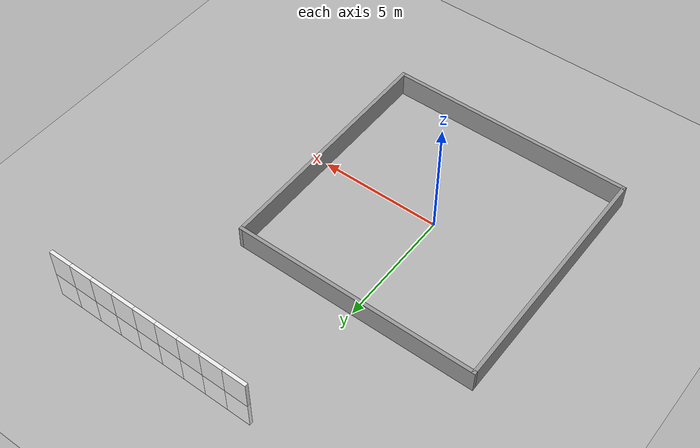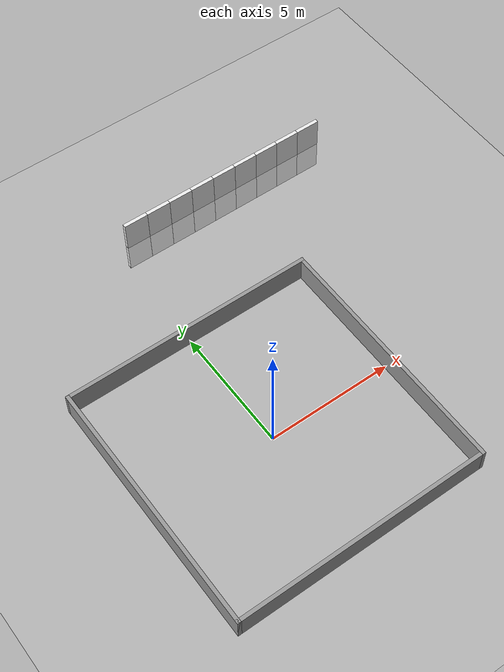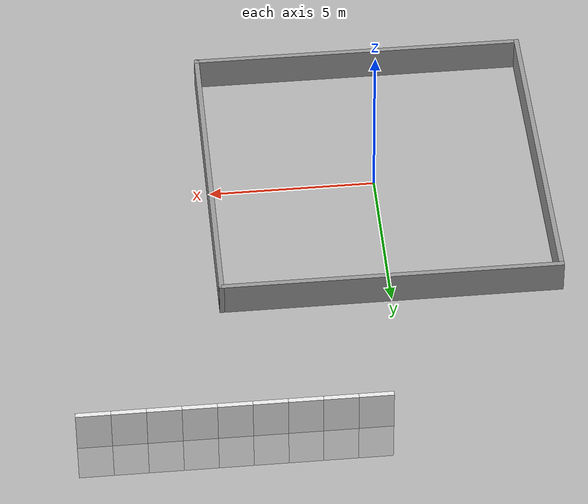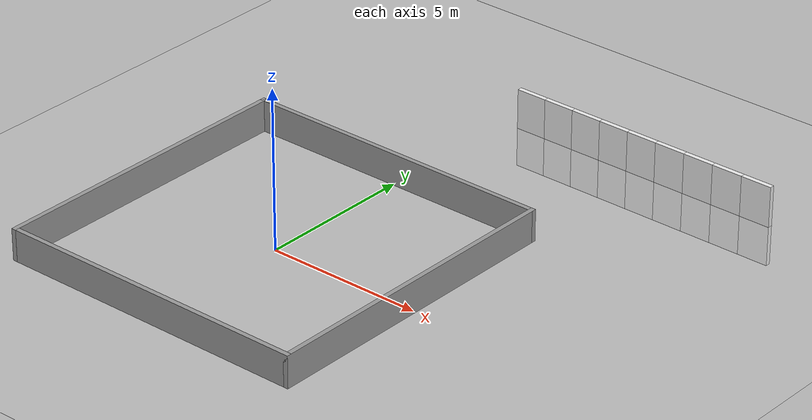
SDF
<sdf version="1.7">
 <world name="default">
  <model name="ground_plane">
   <static>1</static>
   <link name="link">
    <collision name="collision">
     <geometry><plane><normal>0 0 1</normal><size>100 100</size></plane></geometry>
     <surface>
      <contact><collide_bitmask>65535</collide_bitmask></contact>
      <friction><ode><mu>100</mu><mu2>50</mu2></ode></friction>
     </surface>
    </collision>
    <visual name="visual">
     <cast_shadows>0</cast_shadows>
     <geometry><plane><normal>0 0 1</normal><size>100 100</size></plane></geometry>
     <material>
      <script><uri>file://media/materials/scripts/gazebo.material</uri><name>Gazebo/Grey</name></script>
     </material>
    </visual>
   </link>
  </model>
  <model name="wall_left_12">
   <link name="Wall_10">
    <inertial>
     <mass>1</mass>
     <inertia><ixx>1</ixx><ixy>0</ixy><ixz>0</ixz><iyy>1</iyy><iyz>0</iyz><izz>1</izz></inertia>
    </inertial>
    <visual name="Wall_10_Visual_0">
     <geometry><box><size>1 0.15 2.5</size></box></geometry>
     <material>
      <script>
       <uri>model://wall/materials/scripts</uri>
       <uri>model://wall/materials/textures</uri>
       <name>wall_white</name>
      </script>
      <shader type="pixel"><normal_map>__default__</normal_map></shader>
      <ambient>1 1 1 1</ambient>
      <diffuse>1 1 1 1</diffuse>
      <specular>0 0 0 1</specular>
      <emissive>0 0 0 1</emissive>
     </material>
     <meta><layer>0</layer></meta>
    </visual>
    <collision name="Wall_10_Collision_0">
     <geometry><box><size>1 0.15 2.5</size></box></geometry>
     <surface>
      <friction>
       <ode><mu>1</mu><mu2>1</mu2><fdir1>0 0 0</fdir1><slip1>0</slip1><slip2>0</slip2></ode>
       <torsional>
        <coefficient>1</coefficient>
        <patch_radius>0</patch_radius>
        <surface_radius>0</surface_radius>
        <use_patch_radius>1</use_patch_radius>
        <ode><slip>0</slip></ode>
       </torsional>
      </friction>
      <bounce><restitution_coefficient>0</restitution_coefficient><threshold>1e+06</threshold></bounce>
      <contact>
       <collide_without_contact>0</collide_without_contact>
       <collide_without_contact_bitmask>1</collide_without_contact_bitmask>
       <collide_bitmask>1</collide_bitmask>
       <ode>
        <soft_cfm>0</soft_cfm>
        <soft_erp>0.2</soft_erp>
        <kp>1e+13</kp>
        <kd>1</kd>
        <max_vel>0.01</max_vel>
        <min_depth>0</min_depth>
       </ode>
       <bullet>
        <split_impulse>1</split_impulse>
        <split_impulse_penetration_threshold>-0.01</split_impulse_penetration_threshold>
        <soft_cfm>0</soft_cfm>
        <soft_erp>0.2</soft_erp>
        <kp>1e+13</kp>
        <kd>1</kd>
       </bullet>
      </contact>
     </surface>
    </collision>
   </link>
   <static>1</static>
   <pose>1 10 0 0 -0 0</pose>
  </model>
  <model name="wall_left_13">
   <link name="Wall_10">
    <inertial>
     <mass>1</mass>
     <inertia><ixx>1</ixx><ixy>0</ixy><ixz>0</ixz><iyy>1</iyy><iyz>0</iyz><izz>1</izz></inertia>
    </inertial>
    <visual name="Wall_10_Visual_0">
     <geometry><box><size>1 0.15 2.5</size></box></geometry>
     <material>
      <script>
       <uri>model://wall/materials/scripts</uri>
       <uri>model://wall/materials/textures</uri>
       <name>wall_white</name>
      </script>
      <shader type="pixel"><normal_map>__default__</normal_map></shader>
      <ambient>1 1 1 1</ambient>
      <diffuse>1 1 1 1</diffuse>
      <specular>0 0 0 1</specular>
      <emissive>0 0 0 1</emissive>
     </material>
     <meta><layer>0</layer></meta>
    </visual>
    <collision name="Wall_10_Collision_0">
     <geometry><box><size>1 0.15 2.5</size></box></geometry>
     <surface>
      <friction>
       <ode><mu>1</mu><mu2>1</mu2><fdir1>0 0 0</fdir1><slip1>0</slip1><slip2>0</slip2></ode>
       <torsional>
        <coefficient>1</coefficient>
        <patch_radius>0</patch_radius>
        <surface_radius>0</surface_radius>
        <use_patch_radius>1</use_patch_radius>
        <ode><slip>0</slip></ode>
       </torsional>
      </friction>
      <bounce><restitution_coefficient>0</restitution_coefficient><threshold>1e+06</threshold></bounce>
      <contact>
       <collide_without_contact>0</collide_without_contact>
       <collide_without_contact_bitmask>1</collide_without_contact_bitmask>
       <collide_bitmask>1</collide_bitmask>
       <ode>
        <soft_cfm>0</soft_cfm>
        <soft_erp>0.2</soft_erp>
        <kp>1e+13</kp>
        <kd>1</kd>
        <max_vel>0.01</max_vel>
        <min_depth>0</min_depth>
       </ode>
       <bullet>
        <split_impulse>1</split_impulse>
        <split_impulse_penetration_threshold>-0.01</split_impulse_penetration_threshold>
        <soft_cfm>0</soft_cfm>
        <soft_erp>0.2</soft_erp>
        <kp>1e+13</kp>
        <kd>1</kd>
       </bullet>
      </contact>
     </surface>
    </collision>
   </link>
   <static>1</static>
   <pose>2 10 0 0 -0 0</pose>
  </model>
  <model name="wall_left_14">
   <link name="Wall_10">
    <inertial>
     <mass>1</mass>
     <inertia><ixx>1</ixx><ixy>0</ixy><ixz>0</ixz><iyy>1</iyy><iyz>0</iyz><izz>1</izz></inertia>
    </inertial>
    <visual name="Wall_10_Visual_0">
     <geometry><box><size>1 0.15 2.5</size></box></geometry>
     <material>
      <script>
       <uri>model://wall/materials/scripts</uri>
       <uri>model://wall/materials/textures</uri>
       <name>wall_white</name>
      </script>
      <shader type="pixel"><normal_map>__default__</normal_map></shader>
      <ambient>1 1 1 1</ambient>
      <diffuse>1 1 1 1</diffuse>
      <specular>0 0 0 1</specular>
      <emissive>0 0 0 1</emissive>
     </material>
     <meta><layer>0</layer></meta>
    </visual>
    <collision name="Wall_10_Collision_0">
     <geometry><box><size>1 0.15 2.5</size></box></geometry>
     <surface>
      <friction>
       <ode><mu>1</mu><mu2>1</mu2><fdir1>0 0 0</fdir1><slip1>0</slip1><slip2>0</slip2></ode>
       <torsional>
        <coefficient>1</coefficient>
        <patch_radius>0</patch_radius>
        <surface_radius>0</surface_radius>
        <use_patch_radius>1</use_patch_radius>
        <ode><slip>0</slip></ode>
       </torsional>
      </friction>
      <bounce><restitution_coefficient>0</restitution_coefficient><threshold>1e+06</threshold></bounce>
      <contact>
       <collide_without_contact>0</collide_without_contact>
       <collide_without_contact_bitmask>1</collide_without_contact_bitmask>
       <collide_bitmask>1</collide_bitmask>
       <ode>
        <soft_cfm>0</soft_cfm>
        <soft_erp>0.2</soft_erp>
        <kp>1e+13</kp>
        <kd>1</kd>
        <max_vel>0.01</max_vel>
        <min_depth>0</min_depth>
       </ode>
       <bullet>
        <split_impulse>1</split_impulse>
        <split_impulse_penetration_threshold>-0.01</split_impulse_penetration_threshold>
        <soft_cfm>0</soft_cfm>
        <soft_erp>0.2</soft_erp>
        <kp>1e+13</kp>
        <kd>1</kd>
       </bullet>
      </contact>
     </surface>
    </collision>
   </link>
   <static>1</static>
   <pose>3 10 0 0 -0 0</pose>
  </model>
  <model name="wall_left_15">
   <link name="Wall_10">
    <inertial>
     <mass>1</mass>
     <inertia><ixx>1</ixx><ixy>0</ixy><ixz>0</ixz><iyy>1</iyy><iyz>0</iyz><izz>1</izz></inertia>
    </inertial>
    <visual name="Wall_10_Visual_0">
     <geometry><box><size>1 0.15 2.5</size></box></geometry>
     <material>
      <script>
       <uri>model://wall/materials/scripts</uri>
       <uri>model://wall/materials/textures</uri>
       <name>wall_white</name>
      </script>
      <shader type="pixel"><normal_map>__default__</normal_map></shader>
      <ambient>1 1 1 1</ambient>
      <diffuse>1 1 1 1</diffuse>
      <specular>0 0 0 1</specular>
      <emissive>0 0 0 1</emissive>
     </material>
     <meta><layer>0</layer></meta>
    </visual>
    <collision name="Wall_10_Collision_0">
     <geometry><box><size>1 0.15 2.5</size></box></geometry>
     <surface>
      <friction>
       <ode><mu>1</mu><mu2>1</mu2><fdir1>0 0 0</fdir1><slip1>0</slip1><slip2>0</slip2></ode>
       <torsional>
        <coefficient>1</coefficient>
        <patch_radius>0</patch_radius>
        <surface_radius>0</surface_radius>
        <use_patch_radius>1</use_patch_radius>
        <ode><slip>0</slip></ode>
       </torsional>
      </friction>
      <bounce><restitution_coefficient>0</restitution_coefficient><threshold>1e+06</threshold></bounce>
      <contact>
       <collide_without_contact>0</collide_without_contact>
       <collide_without_contact_bitmask>1</collide_without_contact_bitmask>
       <collide_bitmask>1</collide_bitmask>
       <ode>
        <soft_cfm>0</soft_cfm>
        <soft_erp>0.2</soft_erp>
        <kp>1e+13</kp>
        <kd>1</kd>
        <max_vel>0.01</max_vel>
        <min_depth>0</min_depth>
       </ode>
       <bullet>
        <split_impulse>1</split_impulse>
        <split_impulse_penetration_threshold>-0.01</split_impulse_penetration_threshold>
        <soft_cfm>0</soft_cfm>
        <soft_erp>0.2</soft_erp>
        <kp>1e+13</kp>
        <kd>1</kd>
       </bullet>
      </contact>
     </surface>
    </collision>
   </link>
   <static>1</static>
   <pose>4 10 0 0 -0 0</pose>
  </model>
  <model name="wall_left_16">
   <link name="Wall_10">
    <inertial>
     <mass>1</mass>
     <inertia><ixx>1</ixx><ixy>0</ixy><ixz>0</ixz><iyy>1</iyy><iyz>0</iyz><izz>1</izz></inertia>
    </inertial>
    <visual name="Wall_10_Visual_0">
     <geometry><box><size>1 0.15 2.5</size></box></geometry>
     <material>
      <script>
       <uri>model://wall/materials/scripts</uri>
       <uri>model://wall/materials/textures</uri>
       <name>wall_white</name>
      </script>
      <shader type="pixel"><normal_map>__default__</normal_map></shader>
      <ambient>1 1 1 1</ambient>
      <diffuse>1 1 1 1</diffuse>
      <specular>0 0 0 1</specular>
      <emissive>0 0 0 1</emissive>
     </material>
     <meta><layer>0</layer></meta>
    </visual>
    <collision name="Wall_10_Collision_0">
     <geometry><box><size>1 0.15 2.5</size></box></geometry>
     <surface>
      <friction>
       <ode><mu>1</mu><mu2>1</mu2><fdir1>0 0 0</fdir1><slip1>0</slip1><slip2>0</slip2></ode>
       <torsional>
        <coefficient>1</coefficient>
        <patch_radius>0</patch_radius>
        <surface_radius>0</surface_radius>
        <use_patch_radius>1</use_patch_radius>
        <ode><slip>0</slip></ode>
       </torsional>
      </friction>
      <bounce><restitution_coefficient>0</restitution_coefficient><threshold>1e+06</threshold></bounce>
      <contact>
       <collide_without_contact>0</collide_without_contact>
       <collide_without_contact_bitmask>1</collide_without_contact_bitmask>
       <collide_bitmask>1</collide_bitmask>
       <ode>
        <soft_cfm>0</soft_cfm>
        <soft_erp>0.2</soft_erp>
        <kp>1e+13</kp>
        <kd>1</kd>
        <max_vel>0.01</max_vel>
        <min_depth>0</min_depth>
       </ode>
       <bullet>
        <split_impulse>1</split_impulse>
        <split_impulse_penetration_threshold>-0.01</split_impulse_penetration_threshold>
        <soft_cfm>0</soft_cfm>
        <soft_erp>0.2</soft_erp>
        <kp>1e+13</kp>
        <kd>1</kd>
       </bullet>
      </contact>
     </surface>
    </collision>
   </link>
   <static>1</static>
   <pose>5 10 0 0 -0 0</pose>
  </model>
  <model name="wall_left_17">
   <link name="Wall_10">
    <inertial>
     <mass>1</mass>
     <inertia><ixx>1</ixx><ixy>0</ixy><ixz>0</ixz><iyy>1</iyy><iyz>0</iyz><izz>1</izz></inertia>
    </inertial>
    <visual name="Wall_10_Visual_0">
     <geometry><box><size>1 0.15 2.5</size></box></geometry>
     <material>
      <script>
       <uri>model://wall/materials/scripts</uri>
       <uri>model://wall/materials/textures</uri>
       <name>wall_white</name>
      </script>
      <shader type="pixel"><normal_map>__default__</normal_map></shader>
      <ambient>1 1 1 1</ambient>
      <diffuse>1 1 1 1</diffuse>
      <specular>0 0 0 1</specular>
      <emissive>0 0 0 1</emissive>
     </material>
     <meta><layer>0</layer></meta>
    </visual>
    <collision name="Wall_10_Collision_0">
     <geometry><box><size>1 0.15 2.5</size></box></geometry>
     <surface>
      <friction>
       <ode><mu>1</mu><mu2>1</mu2><fdir1>0 0 0</fdir1><slip1>0</slip1><slip2>0</slip2></ode>
       <torsional>
        <coefficient>1</coefficient>
        <patch_radius>0</patch_radius>
        <surface_radius>0</surface_radius>
        <use_patch_radius>1</use_patch_radius>
        <ode><slip>0</slip></ode>
       </torsional>
      </friction>
      <bounce><restitution_coefficient>0</restitution_coefficient><threshold>1e+06</threshold></bounce>
      <contact>
       <collide_without_contact>0</collide_without_contact>
       <collide_without_contact_bitmask>1</collide_without_contact_bitmask>
       <collide_bitmask>1</collide_bitmask>
       <ode>
        <soft_cfm>0</soft_cfm>
        <soft_erp>0.2</soft_erp>
        <kp>1e+13</kp>
        <kd>1</kd>
        <max_vel>0.01</max_vel>
        <min_depth>0</min_depth>
       </ode>
       <bullet>
        <split_impulse>1</split_impulse>
        <split_impulse_penetration_threshold>-0.01</split_impulse_penetration_threshold>
        <soft_cfm>0</soft_cfm>
        <soft_erp>0.2</soft_erp>
        <kp>1e+13</kp>
        <kd>1</kd>
       </bullet>
      </contact>
     </surface>
    </collision>
   </link>
   <static>1</static>
   <pose>6 10 0 0 -0 0</pose>
  </model>
  <model name="wall_left_18">
   <link name="Wall_10">
    <inertial>
     <mass>1</mass>
     <inertia><ixx>1</ixx><ixy>0</ixy><ixz>0</ixz><iyy>1</iyy><iyz>0</iyz><izz>1</izz></inertia>
    </inertial>
    <visual name="Wall_10_Visual_0">
     <geometry><box><size>1 0.15 2.5</size></box></geometry>
     <material>
      <script>
       <uri>model://wall/materials/scripts</uri>
       <uri>model://wall/materials/textures</uri>
       <name>wall_white</name>
      </script>
      <shader type="pixel"><normal_map>__default__</normal_map></shader>
      <ambient>1 1 1 1</ambient>
      <diffuse>1 1 1 1</diffuse>
      <specular>0 0 0 1</specular>
      <emissive>0 0 0 1</emissive>
     </material>
     <meta><layer>0</layer></meta>
    </visual>
    <collision name="Wall_10_Collision_0">
     <geometry><box><size>1 0.15 2.5</size></box></geometry>
     <surface>
      <friction>
       <ode><mu>1</mu><mu2>1</mu2><fdir1>0 0 0</fdir1><slip1>0</slip1><slip2>0</slip2></ode>
       <torsional>
        <coefficient>1</coefficient>
        <patch_radius>0</patch_radius>
        <surface_radius>0</surface_radius>
        <use_patch_radius>1</use_patch_radius>
        <ode><slip>0</slip></ode>
       </torsional>
      </friction>
      <bounce><restitution_coefficient>0</restitution_coefficient><threshold>1e+06</threshold></bounce>
      <contact>
       <collide_without_contact>0</collide_without_contact>
       <collide_without_contact_bitmask>1</collide_without_contact_bitmask>
       <collide_bitmask>1</collide_bitmask>
       <ode>
        <soft_cfm>0</soft_cfm>
        <soft_erp>0.2</soft_erp>
        <kp>1e+13</kp>
        <kd>1</kd>
        <max_vel>0.01</max_vel>
        <min_depth>0</min_depth>
       </ode>
       <bullet>
        <split_impulse>1</split_impulse>
        <split_impulse_penetration_threshold>-0.01</split_impulse_penetration_threshold>
        <soft_cfm>0</soft_cfm>
        <soft_erp>0.2</soft_erp>
        <kp>1e+13</kp>
        <kd>1</kd>
       </bullet>
      </contact>
     </surface>
    </collision>
   </link>
   <static>1</static>
   <pose>7 10 0 0 -0 0</pose>
  </model>
  <model name="wall_left_19">
   <link name="Wall_10">
    <inertial>
     <mass>1</mass>
     <inertia><ixx>1</ixx><ixy>0</ixy><ixz>0</ixz><iyy>1</iyy><iyz>0</iyz><izz>1</izz></inertia>
    </inertial>
    <visual name="Wall_10_Visual_0">
     <geometry><box><size>1 0.15 2.5</size></box></geometry>
     <material>
      <script>
       <uri>model://wall/materials/scripts</uri>
       <uri>model://wall/materials/textures</uri>
       <name>wall_white</name>
      </script>
      <shader type="pixel"><normal_map>__default__</normal_map></shader>
      <ambient>1 1 1 1</ambient>
      <diffuse>1 1 1 1</diffuse>
      <specular>0 0 0 1</specular>
      <emissive>0 0 0 1</emissive>
     </material>
     <meta><layer>0</layer></meta>
    </visual>
    <collision name="Wall_10_Collision_0">
     <geometry><box><size>1 0.15 2.5</size></box></geometry>
     <surface>
      <friction>
       <ode><mu>1</mu><mu2>1</mu2><fdir1>0 0 0</fdir1><slip1>0</slip1><slip2>0</slip2></ode>
       <torsional>
        <coefficient>1</coefficient>
        <patch_radius>0</patch_radius>
        <surface_radius>0</surface_radius>
        <use_patch_radius>1</use_patch_radius>
        <ode><slip>0</slip></ode>
       </torsional>
      </friction>
      <bounce><restitution_coefficient>0</restitution_coefficient><threshold>1e+06</threshold></bounce>
      <contact>
       <collide_without_contact>0</collide_without_contact>
       <collide_without_contact_bitmask>1</collide_without_contact_bitmask>
       <collide_bitmask>1</collide_bitmask>
       <ode>
        <soft_cfm>0</soft_cfm>
        <soft_erp>0.2</soft_erp>
        <kp>1e+13</kp>
        <kd>1</kd>
        <max_vel>0.01</max_vel>
        <min_depth>0</min_depth>
       </ode>
       <bullet>
        <split_impulse>1</split_impulse>
        <split_impulse_penetration_threshold>-0.01</split_impulse_penetration_threshold>
        <soft_cfm>0</soft_cfm>
        <soft_erp>0.2</soft_erp>
        <kp>1e+13</kp>
        <kd>1</kd>
       </bullet>
      </contact>
     </surface>
    </collision>
   </link>
   <static>1</static>
   <pose>8 10 0 0 -0 0</pose>
  </model>
  <model name="wall_left_20">
   <link name="Wall_10">
    <inertial>
     <mass>1</mass>
     <inertia><ixx>1</ixx><ixy>0</ixy><ixz>0</ixz><iyy>1</iyy><iyz>0</iyz><izz>1</izz></inertia>
    </inertial>
    <visual name="Wall_10_Visual_0">
     <geometry><box><size>1 0.15 2.5</size></box></geometry>
     <material>
      <script>
       <uri>model://wall/materials/scripts</uri>
       <uri>model://wall/materials/textures</uri>
       <name>wall_white</name>
      </script>
      <shader type="pixel"><normal_map>__default__</normal_map></shader>
      <ambient>1 1 1 1</ambient>
      <diffuse>1 1 1 1</diffuse>
      <specular>0 0 0 1</specular>
      <emissive>0 0 0 1</emissive>
     </material>
     <meta><layer>0</layer></meta>
    </visual>
    <collision name="Wall_10_Collision_0">
     <geometry><box><size>1 0.15 2.5</size></box></geometry>
     <surface>
      <friction>
       <ode><mu>1</mu><mu2>1</mu2><fdir1>0 0 0</fdir1><slip1>0</slip1><slip2>0</slip2></ode>
       <torsional>
        <coefficient>1</coefficient>
        <patch_radius>0</patch_radius>
        <surface_radius>0</surface_radius>
        <use_patch_radius>1</use_patch_radius>
        <ode><slip>0</slip></ode>
       </torsional>
      </friction>
      <bounce><restitution_coefficient>0</restitution_coefficient><threshold>1e+06</threshold></bounce>
      <contact>
       <collide_without_contact>0</collide_without_contact>
       <collide_without_contact_bitmask>1</collide_without_contact_bitmask>
       <collide_bitmask>1</collide_bitmask>
       <ode>
        <soft_cfm>0</soft_cfm>
        <soft_erp>0.2</soft_erp>
        <kp>1e+13</kp>
        <kd>1</kd>
        <max_vel>0.01</max_vel>
        <min_depth>0</min_depth>
       </ode>
       <bullet>
        <split_impulse>1</split_impulse>
        <split_impulse_penetration_threshold>-0.01</split_impulse_penetration_threshold>
        <soft_cfm>0</soft_cfm>
        <soft_erp>0.2</soft_erp>
        <kp>1e+13</kp>
        <kd>1</kd>
       </bullet>
      </contact>
     </surface>
    </collision>
   </link>
   <static>1</static>
   <pose>9 10 0 0 -0 0</pose>
  </model>
  <model name="big_square_dir">
   <link name="Wall_0">
    <collision name="Wall_0_Collision">
     <geometry><box><size>10.15 0.15 1</size></box></geometry>
     <pose>0 0 0.5 0 -0 0</pose>
    </collision>
    <visual name="Wall_0_Visual">
     <pose>0 0 0.5 0 -0 0</pose>
     <geometry><box><size>10.15 0.15 1</size></box></geometry>
     <material>
      <script><uri>file://media/materials/scripts/gazebo.material</uri><name>Gazebo/Grey</name></script>
      <ambient>1 1 1 1</ambient>
     </material>
     <meta><layer>0</layer></meta>
    </visual>
    <pose>0 -5 0 0 -0 0</pose>
   </link>
   <link name="Wall_1">
    <collision name="Wall_1_Collision">
     <geometry><box><size>10.15 0.15 1</size></box></geometry>
     <pose>0 0 0.5 0 -0 0</pose>
    </collision>
    <visual name="Wall_1_Visual">
     <pose>0 0 0.5 0 -0 0</pose>
     <geometry><box><size>10.15 0.15 1</size></box></geometry>
     <material>
      <script><uri>file://media/materials/scripts/gazebo.material</uri><name>Gazebo/Grey</name></script>
      <ambient>1 1 1 1</ambient>
     </material>
     <meta><layer>0</layer></meta>
    </visual>
    <pose>5 0 0 0 -0 1.5708</pose>
   </link>
   <link name="Wall_2">
    <collision name="Wall_2_Collision">
     <geometry><box><size>10.15 0.15 1</size></box></geometry>
     <pose>0 0 0.5 0 -0 0</pose>
    </collision>
    <visual name="Wall_2_Visual">
     <pose>0 0 0.5 0 -0 0</pose>
     <geometry><box><size>10.15 0.15 1</size></box></geometry>
     <material>
      <script><uri>file://media/materials/scripts/gazebo.material</uri><name>Gazebo/Grey</name></script>
      <ambient>1 1 1 1</ambient>
     </material>
     <meta><layer>0</layer></meta>
    </visual>
    <pose>0 5 0 0 -0 3.14159</pose>
   </link>
   <link name="Wall_3">
    <collision name="Wall_3_Collision">
     <geometry><box><size>10.15 0.15 1</size></box></geometry>
     <pose>0 0 0.5 0 -0 0</pose>
    </collision>
    <visual name="Wall_3_Visual">
     <pose>0 0 0.5 0 -0 0</pose>
     <geometry><box><size>10.15 0.15 1</size></box></geometry>
     <material>
      <script><uri>file://media/materials/scripts/gazebo.material</uri><name>Gazebo/Grey</name></script>
      <ambient>1 1 1 1</ambient>
     </material>
     <meta><layer>0</layer></meta>
    </visual>
    <pose>-5 0 0 0 -0 -1.5708</pose>
   </link>
   <static>1</static>
  </model>
 </world>
</sdf>
